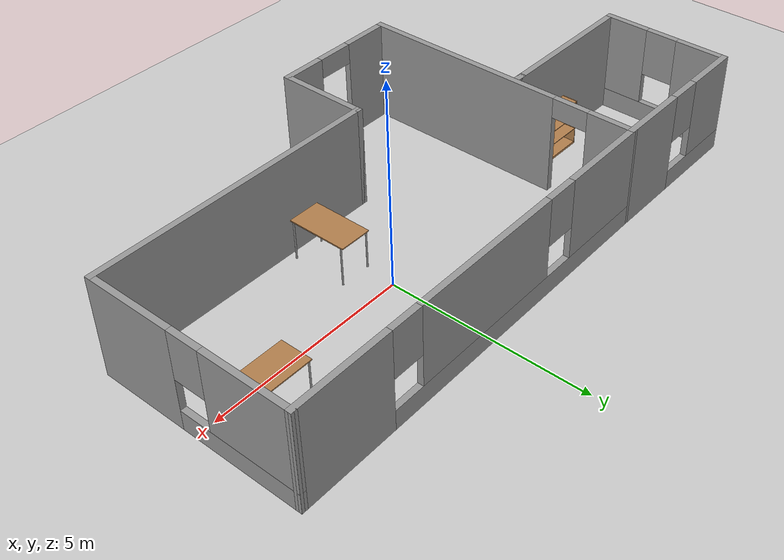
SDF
<sdf version="1.6">
 <world name="default">
  <plugin name="hello" filename="libhello.so"/>
  <model name="ground_plane">
   <static>1</static>
   <link name="link">
    <collision name="collision">
     <geometry><plane><normal>0 0 1</normal><size>100 100</size></plane></geometry>
     <surface>
      <contact><collide_bitmask>65535</collide_bitmask></contact>
      <friction><ode><mu>100</mu><mu2>50</mu2></ode></friction>
     </surface>
    </collision>
    <visual name="visual">
     <cast_shadows>0</cast_shadows>
     <geometry><plane><normal>0 0 1</normal><size>100 100</size></plane></geometry>
     <material>
      <script><uri>file://media/materials/scripts/gazebo.material</uri><name>Gazebo/Grey</name></script>
     </material>
    </visual>
   </link>
  </model>
  <gravity>0 0 -9.8</gravity>
  <magnetic_field>6e-06 2.3e-05 -4.2e-05</magnetic_field>
  <atmosphere type="adiabatic"/>
  <physics name="default_physics" default="0" type="ode">
   <max_step_size>0.001</max_step_size>
   <real_time_factor>1</real_time_factor>
   <real_time_update_rate>1000</real_time_update_rate>
  </physics>
  <scene><ambient>0.4 0.4 0.4 1</ambient><background>0.7 0.7 0.7 1</background><shadows>1</shadows></scene>
  <spherical_coordinates>
   <surface_model>EARTH_WGS84</surface_model>
   <latitude_deg>0</latitude_deg>
   <longitude_deg>0</longitude_deg>
   <elevation>0</elevation>
   <heading_deg>0</heading_deg>
  </spherical_coordinates>
  <model name="House">
   <pose>-1.63925 -0.94745 0 0 -0 0</pose>
   <link name="Wall_10">
    <collision name="Wall_10_Collision">
     <geometry><box><size>2.25 0.15 2.5</size></box></geometry>
     <pose>0 0 1.25 0 -0 0</pose>
    </collision>
    <visual name="Wall_10_Visual">
     <pose>0 0 1.25 0 -0 0</pose>
     <geometry><box><size>2.25 0.15 2.5</size></box></geometry>
     <material>
      <script><uri>file://media/materials/scripts/gazebo.material</uri><name>Gazebo/Grey</name></script>
      <ambient>1 1 1 1</ambient>
     </material>
     <meta><layer>0</layer></meta>
    </visual>
    <pose>-0.075367 -2.55037 0 0 -0 1.5708</pose>
   </link>
   <link name="Wall_11">
    <collision name="Wall_11_Collision">
     <geometry><box><size>7.25 0.15 2.5</size></box></geometry>
     <pose>0 0 1.25 0 -0 0</pose>
    </collision>
    <visual name="Wall_11_Visual">
     <pose>0 0 1.25 0 -0 0</pose>
     <geometry><box><size>7.25 0.15 2.5</size></box></geometry>
     <material>
      <script><uri>file://media/materials/scripts/gazebo.material</uri><name>Gazebo/Grey</name></script>
      <ambient>1 1 1 1</ambient>
     </material>
     <meta><layer>0</layer></meta>
    </visual>
    <pose>3.47463 -1.50037 0 0 -0 0</pose>
   </link>
   <link name="Wall_12">
    <pose>7.02463 1.04963 0 0 -0 1.5708</pose>
    <visual name="Wall_12_Visual_0">
     <pose>-1.51989 0 1.25 0 -0 0</pose>
     <geometry><box><size>2.21023 0.15 2.5</size></box></geometry>
     <material>
      <script><uri>file://media/materials/scripts/gazebo.material</uri><name>Gazebo/Grey</name></script>
      <ambient>1 1 1 1</ambient>
     </material>
     <meta><layer>0</layer></meta>
    </visual>
    <collision name="Wall_12_Collision_0">
     <geometry><box><size>2.21023 0.15 2.5</size></box></geometry>
     <pose>-1.51989 0 1.25 0 -0 0</pose>
    </collision>
    <visual name="Wall_12_Visual_1">
     <pose>1.10511 0 0.25 0 -0 0</pose>
     <geometry><box><size>3.03977 0.15 0.5</size></box></geometry>
     <material>
      <script><uri>file://media/materials/scripts/gazebo.material</uri><name>Gazebo/Grey</name></script>
      <ambient>1 1 1 1</ambient>
     </material>
     <meta><layer>0</layer></meta>
    </visual>
    <collision name="Wall_12_Collision_1">
     <geometry><box><size>3.03977 0.15 0.5</size></box></geometry>
     <pose>1.10511 0 0.25 0 -0 0</pose>
    </collision>
    <visual name="Wall_12_Visual_2">
     <pose>1.50511 0 1.5 0 -0 0</pose>
     <geometry><box><size>2.23977 0.15 2</size></box></geometry>
     <material>
      <script><uri>file://media/materials/scripts/gazebo.material</uri><name>Gazebo/Grey</name></script>
      <ambient>1 1 1 1</ambient>
     </material>
     <meta><layer>0</layer></meta>
    </visual>
    <collision name="Wall_12_Collision_2">
     <geometry><box><size>2.23977 0.15 2</size></box></geometry>
     <pose>1.50511 0 1.5 0 -0 0</pose>
    </collision>
    <visual name="Wall_12_Visual_3">
     <pose>-0.014772 0 1.9 0 -0 0</pose>
     <geometry><box><size>0.8 0.15 1.2</size></box></geometry>
     <material>
      <script><uri>file://media/materials/scripts/gazebo.material</uri><name>Gazebo/Grey</name></script>
      <ambient>1 1 1 1</ambient>
     </material>
     <meta><layer>0</layer></meta>
    </visual>
    <collision name="Wall_12_Collision_3">
     <geometry><box><size>0.8 0.15 1.2</size></box></geometry>
     <pose>-0.014772 0 1.9 0 -0 0</pose>
    </collision>
   </link>
   <link name="Wall_13">
    <pose>1.92463 3.54963 0 0 0 -3.13179</pose>
    <visual name="Wall_13_Visual_0">
     <pose>-3.9405 0 1.25 0 -0 0</pose>
     <geometry><box><size>2.46948 0.15 2.5</size></box></geometry>
     <material>
      <script><uri>file://media/materials/scripts/gazebo.material</uri><name>Gazebo/Grey</name></script>
      <ambient>1 1 1 1</ambient>
     </material>
     <meta><layer>0</layer></meta>
    </visual>
    <collision name="Wall_13_Collision_0">
     <geometry><box><size>2.46948 0.15 2.5</size></box></geometry>
     <pose>-3.9405 0 1.25 0 -0 0</pose>
    </collision>
    <visual name="Wall_13_Visual_1">
     <pose>1.23474 0 0.25 0 -0 0</pose>
     <geometry><box><size>7.88101 0.15 0.5</size></box></geometry>
     <material>
      <script><uri>file://media/materials/scripts/gazebo.material</uri><name>Gazebo/Grey</name></script>
      <ambient>1 1 1 1</ambient>
     </material>
     <meta><layer>0</layer></meta>
    </visual>
    <collision name="Wall_13_Collision_1">
     <geometry><box><size>7.88101 0.15 0.5</size></box></geometry>
     <pose>1.23474 0 0.25 0 -0 0</pose>
    </collision>
    <visual name="Wall_13_Visual_2">
     <pose>0.068692 0 1.5 0 -0 0</pose>
     <geometry><box><size>3.9489 0.15 2</size></box></geometry>
     <material>
      <script><uri>file://media/materials/scripts/gazebo.material</uri><name>Gazebo/Grey</name></script>
      <ambient>1 1 1 1</ambient>
     </material>
     <meta><layer>0</layer></meta>
    </visual>
    <collision name="Wall_13_Collision_2">
     <geometry><box><size>3.9489 0.15 2</size></box></geometry>
     <pose>0.068692 0 1.5 0 -0 0</pose>
    </collision>
    <visual name="Wall_13_Visual_3">
     <pose>4.0092 0 1.5 0 -0 0</pose>
     <geometry><box><size>2.3321 0.15 2</size></box></geometry>
     <material>
      <script><uri>file://media/materials/scripts/gazebo.material</uri><name>Gazebo/Grey</name></script>
      <ambient>1 1 1 1</ambient>
     </material>
     <meta><layer>0</layer></meta>
    </visual>
    <collision name="Wall_13_Collision_3">
     <geometry><box><size>2.3321 0.15 2</size></box></geometry>
     <pose>4.0092 0 1.5 0 -0 0</pose>
    </collision>
    <visual name="Wall_13_Visual_4">
     <pose>-2.30576 0 1.9 0 -0 0</pose>
     <geometry><box><size>0.8 0.15 1.2</size></box></geometry>
     <material>
      <script><uri>file://media/materials/scripts/gazebo.material</uri><name>Gazebo/Grey</name></script>
      <ambient>1 1 1 1</ambient>
     </material>
     <meta><layer>0</layer></meta>
    </visual>
    <collision name="Wall_13_Collision_4">
     <geometry><box><size>0.8 0.15 1.2</size></box></geometry>
     <pose>-2.30576 0 1.9 0 -0 0</pose>
    </collision>
    <visual name="Wall_13_Visual_5">
     <pose>2.44314 0 1.9 0 -0 0</pose>
     <geometry><box><size>0.8 0.15 1.2</size></box></geometry>
     <material>
      <script><uri>file://media/materials/scripts/gazebo.material</uri><name>Gazebo/Grey</name></script>
      <ambient>1 1 1 1</ambient>
     </material>
     <meta><layer>0</layer></meta>
    </visual>
    <collision name="Wall_13_Collision_5">
     <geometry><box><size>0.8 0.15 1.2</size></box></geometry>
     <pose>2.44314 0 1.9 0 -0 0</pose>
    </collision>
   </link>
   <link name="Wall_14">
    <pose>-5.10037 3.49963 0 0 -0 3.14159</pose>
    <visual name="Wall_14_Visual_0">
     <pose>-1.11622 0 1.25 0 -0 0</pose>
     <geometry><box><size>1.76756 0.15 2.5</size></box></geometry>
     <material>
      <script><uri>file://media/materials/scripts/gazebo.material</uri><name>Gazebo/Grey</name></script>
      <ambient>1 1 1 1</ambient>
     </material>
     <meta><layer>0</layer></meta>
    </visual>
    <collision name="Wall_14_Collision_0">
     <geometry><box><size>1.76756 0.15 2.5</size></box></geometry>
     <pose>-1.11622 0 1.25 0 -0 0</pose>
    </collision>
    <visual name="Wall_14_Visual_1">
     <pose>0.883779 0 0.25 0 -0 0</pose>
     <geometry><box><size>2.23244 0.15 0.5</size></box></geometry>
     <material>
      <script><uri>file://media/materials/scripts/gazebo.material</uri><name>Gazebo/Grey</name></script>
      <ambient>1 1 1 1</ambient>
     </material>
     <meta><layer>0</layer></meta>
    </visual>
    <collision name="Wall_14_Collision_1">
     <geometry><box><size>2.23244 0.15 0.5</size></box></geometry>
     <pose>0.883779 0 0.25 0 -0 0</pose>
    </collision>
    <visual name="Wall_14_Visual_2">
     <pose>1.28378 0 1.5 0 -0 0</pose>
     <geometry><box><size>1.43244 0.15 2</size></box></geometry>
     <material>
      <script><uri>file://media/materials/scripts/gazebo.material</uri><name>Gazebo/Grey</name></script>
      <ambient>1 1 1 1</ambient>
     </material>
     <meta><layer>0</layer></meta>
    </visual>
    <collision name="Wall_14_Collision_2">
     <geometry><box><size>1.43244 0.15 2</size></box></geometry>
     <pose>1.28378 0 1.5 0 -0 0</pose>
    </collision>
    <visual name="Wall_14_Visual_3">
     <pose>0.167557 0 1.9 0 -0 0</pose>
     <geometry><box><size>0.8 0.15 1.2</size></box></geometry>
     <material>
      <script><uri>file://media/materials/scripts/gazebo.material</uri><name>Gazebo/Grey</name></script>
      <ambient>1 1 1 1</ambient>
     </material>
     <meta><layer>0</layer></meta>
    </visual>
    <collision name="Wall_14_Collision_3">
     <geometry><box><size>0.8 0.15 1.2</size></box></geometry>
     <pose>0.167557 0 1.9 0 -0 0</pose>
    </collision>
   </link>
   <link name="Wall_15">
    <pose>-7.02537 1.94963 0 0 0 -1.5708</pose>
    <visual name="Wall_15_Visual_0">
     <pose>-0.976509 0 1.25 0 -0 0</pose>
     <geometry><box><size>1.29698 0.15 2.5</size></box></geometry>
     <material>
      <script><uri>file://media/materials/scripts/gazebo.material</uri><name>Gazebo/Grey</name></script>
      <ambient>1 1 1 1</ambient>
     </material>
     <meta><layer>0</layer></meta>
    </visual>
    <collision name="Wall_15_Collision_0">
     <geometry><box><size>1.29698 0.15 2.5</size></box></geometry>
     <pose>-0.976509 0 1.25 0 -0 0</pose>
    </collision>
    <visual name="Wall_15_Visual_1">
     <pose>0.648491 0 0.25 0 -0 0</pose>
     <geometry><box><size>1.95302 0.15 0.5</size></box></geometry>
     <material>
      <script><uri>file://media/materials/scripts/gazebo.material</uri><name>Gazebo/Grey</name></script>
      <ambient>1 1 1 1</ambient>
     </material>
     <meta><layer>0</layer></meta>
    </visual>
    <collision name="Wall_15_Collision_1">
     <geometry><box><size>1.95302 0.15 0.5</size></box></geometry>
     <pose>0.648491 0 0.25 0 -0 0</pose>
    </collision>
    <visual name="Wall_15_Visual_2">
     <pose>1.04849 0 1.5 0 -0 0</pose>
     <geometry><box><size>1.15302 0.15 2</size></box></geometry>
     <material>
      <script><uri>file://media/materials/scripts/gazebo.material</uri><name>Gazebo/Grey</name></script>
      <ambient>1 1 1 1</ambient>
     </material>
     <meta><layer>0</layer></meta>
    </visual>
    <collision name="Wall_15_Collision_2">
     <geometry><box><size>1.15302 0.15 2</size></box></geometry>
     <pose>1.04849 0 1.5 0 -0 0</pose>
    </collision>
    <visual name="Wall_15_Visual_3">
     <pose>0.071982 0 1.9 0 -0 0</pose>
     <geometry><box><size>0.8 0.15 1.2</size></box></geometry>
     <material>
      <script><uri>file://media/materials/scripts/gazebo.material</uri><name>Gazebo/Grey</name></script>
      <ambient>1 1 1 1</ambient>
     </material>
     <meta><layer>0</layer></meta>
    </visual>
    <collision name="Wall_15_Collision_3">
     <geometry><box><size>0.8 0.15 1.2</size></box></geometry>
     <pose>0.071982 0 1.9 0 -0 0</pose>
    </collision>
   </link>
   <link name="Wall_16">
    <collision name="Wall_16_Collision">
     <geometry><box><size>3.75 0.15 2.5</size></box></geometry>
     <pose>0 0 1.25 0 -0 0</pose>
    </collision>
    <visual name="Wall_16_Visual">
     <pose>0 0 1.25 0 -0 0</pose>
     <geometry><box><size>3.75 0.15 2.5</size></box></geometry>
     <material>
      <script><uri>file://media/materials/scripts/gazebo.material</uri><name>Gazebo/Grey</name></script>
      <ambient>1 1 1 1</ambient>
     </material>
     <meta><layer>0</layer></meta>
    </visual>
    <pose>-5.22537 0.399634 0 0 -0 0</pose>
   </link>
   <link name="Wall_17">
    <collision name="Wall_17_Collision">
     <geometry><box><size>0.15 0.15 2.5</size></box></geometry>
     <pose>0 0 1.25 0 -0 0</pose>
    </collision>
    <visual name="Wall_17_Visual">
     <pose>0 0 1.25 0 -0 0</pose>
     <geometry><box><size>0.15 0.15 2.5</size></box></geometry>
     <material>
      <script><uri>file://media/materials/scripts/gazebo.material</uri><name>Gazebo/Grey</name></script>
      <ambient>1 1 1 1</ambient>
     </material>
     <meta><layer>0</layer></meta>
    </visual>
    <pose>-3.42537 0.399634 0 0 -0 0</pose>
   </link>
   <link name="Wall_18">
    <collision name="Wall_18_Collision">
     <geometry><box><size>0.25 0.15 2.5</size></box></geometry>
     <pose>0 0 1.25 0 -0 0</pose>
    </collision>
    <visual name="Wall_18_Visual">
     <pose>0 0 1.25 0 -0 0</pose>
     <geometry><box><size>0.25 0.15 2.5</size></box></geometry>
     <material>
      <script><uri>file://media/materials/scripts/gazebo.material</uri><name>Gazebo/Grey</name></script>
      <ambient>1 1 1 1</ambient>
     </material>
     <meta><layer>0</layer></meta>
    </visual>
    <pose>-3.37537 0.399634 0 0 -0 0</pose>
   </link>
   <link name="Wall_5">
    <pose>-3.17537 -0.050366 0 0 0 -1.5708</pose>
    <visual name="Wall_5_Visual_0">
     <pose>-3.03669 0 1.25 0 -0 0</pose>
     <geometry><box><size>1.17662 0.15 2.5</size></box></geometry>
     <material>
      <script><uri>file://media/materials/scripts/gazebo.material</uri><name>Gazebo/Grey</name></script>
      <ambient>1 1 1 1</ambient>
     </material>
     <meta><layer>0</layer></meta>
    </visual>
    <collision name="Wall_5_Collision_0">
     <geometry><box><size>1.17662 0.15 2.5</size></box></geometry>
     <pose>-3.03669 0 1.25 0 -0 0</pose>
    </collision>
    <visual name="Wall_5_Visual_1">
     <pose>1.03831 0 1.25 0 -0 0</pose>
     <geometry><box><size>5.17338 0.15 2.5</size></box></geometry>
     <material>
      <script><uri>file://media/materials/scripts/gazebo.material</uri><name>Gazebo/Grey</name></script>
      <ambient>1 1 1 1</ambient>
     </material>
     <meta><layer>0</layer></meta>
    </visual>
    <collision name="Wall_5_Collision_1">
     <geometry><box><size>5.17338 0.15 2.5</size></box></geometry>
     <pose>1.03831 0 1.25 0 -0 0</pose>
    </collision>
    <visual name="Wall_5_Visual_2">
     <pose>-1.99838 0 2.25 0 -0 0</pose>
     <geometry><box><size>0.9 0.15 0.5</size></box></geometry>
     <material>
      <script><uri>file://media/materials/scripts/gazebo.material</uri><name>Gazebo/Grey</name></script>
      <ambient>1 1 1 1</ambient>
     </material>
     <meta><layer>0</layer></meta>
    </visual>
    <collision name="Wall_5_Collision_2">
     <geometry><box><size>0.9 0.15 0.5</size></box></geometry>
     <pose>-1.99838 0 2.25 0 -0 0</pose>
    </collision>
   </link>
   <link name="Wall_6">
    <pose>-1.62537 -3.60037 0 0 -0 0</pose>
    <visual name="Wall_6_Visual_0">
     <pose>-0.986875 0 1.25 0 -0 0</pose>
     <geometry><box><size>1.27625 0.15 2.5</size></box></geometry>
     <material>
      <script><uri>file://media/materials/scripts/gazebo.material</uri><name>Gazebo/Grey</name></script>
      <ambient>1 1 1 1</ambient>
     </material>
     <meta><layer>0</layer></meta>
    </visual>
    <collision name="Wall_6_Collision_0">
     <geometry><box><size>1.27625 0.15 2.5</size></box></geometry>
     <pose>-0.986875 0 1.25 0 -0 0</pose>
    </collision>
    <visual name="Wall_6_Visual_1">
     <pose>1.08813 0 1.25 0 -0 0</pose>
     <geometry><box><size>1.07375 0.15 2.5</size></box></geometry>
     <material>
      <script><uri>file://media/materials/scripts/gazebo.material</uri><name>Gazebo/Grey</name></script>
      <ambient>1 1 1 1</ambient>
     </material>
     <meta><layer>0</layer></meta>
    </visual>
    <collision name="Wall_6_Collision_1">
     <geometry><box><size>1.07375 0.15 2.5</size></box></geometry>
     <pose>1.08813 0 1.25 0 -0 0</pose>
    </collision>
    <visual name="Wall_6_Visual_2">
     <pose>0.101249 0 2.25 0 -0 0</pose>
     <geometry><box><size>0.9 0.15 0.5</size></box></geometry>
     <material>
      <script><uri>file://media/materials/scripts/gazebo.material</uri><name>Gazebo/Grey</name></script>
      <ambient>1 1 1 1</ambient>
     </material>
     <meta><layer>0</layer></meta>
    </visual>
    <collision name="Wall_6_Collision_2">
     <geometry><box><size>0.9 0.15 0.5</size></box></geometry>
     <pose>0.101249 0 2.25 0 -0 0</pose>
    </collision>
   </link>
   <static>1</static>
  </model>
  <model name="bookshelf">
   <static>1</static>
   <link name="link">
    <inertial><mass>1</mass></inertial>
    <collision name="back">
     <pose>0 0.005 0.6 0 -0 0</pose>
     <geometry><box><size>0.9 0.01 1.2</size></box></geometry>
    </collision>
    <visual name="visual1">
     <pose>0 0.005 0.6 0 -0 0</pose>
     <geometry><box><size>0.9 0.01 1.2</size></box></geometry>
     <material>
      <script><uri>file://media/materials/scripts/gazebo.material</uri><name>Gazebo/Wood</name></script>
     </material>
    </visual>
    <collision name="left_side">
     <pose>0.45 -0.195 0.6 0 -0 0</pose>
     <geometry><box><size>0.02 0.4 1.2</size></box></geometry>
    </collision>
    <visual name="visual2">
     <pose>0.45 -0.195 0.6 0 -0 0</pose>
     <geometry><box><size>0.02 0.4 1.2</size></box></geometry>
     <material>
      <script><uri>file://media/materials/scripts/gazebo.material</uri><name>Gazebo/Wood</name></script>
     </material>
    </visual>
    <collision name="right_side">
     <pose>-0.45 -0.195 0.6 0 -0 0</pose>
     <geometry><box><size>0.02 0.4 1.2</size></box></geometry>
    </collision>
    <visual name="visual3">
     <pose>-0.45 -0.195 0.6 0 -0 0</pose>
     <geometry><box><size>0.02 0.4 1.2</size></box></geometry>
     <material>
      <script><uri>file://media/materials/scripts/gazebo.material</uri><name>Gazebo/Wood</name></script>
     </material>
    </visual>
    <collision name="bottom">
     <pose>0 -0.195 0.03 0 -0 0</pose>
     <geometry><box><size>0.88 0.4 0.06</size></box></geometry>
    </collision>
    <visual name="visual4">
     <pose>0 -0.195 0.03 0 -0 0</pose>
     <geometry><box><size>0.88 0.4 0.06</size></box></geometry>
     <material>
      <script><uri>file://media/materials/scripts/gazebo.material</uri><name>Gazebo/Wood</name></script>
     </material>
    </visual>
    <collision name="top">
     <pose>0 -0.195 1.19 0 -0 0</pose>
     <geometry><box><size>0.88 0.4 0.02</size></box></geometry>
    </collision>
    <visual name="visual5">
     <pose>0 -0.195 1.19 0 -0 0</pose>
     <geometry><box><size>0.88 0.4 0.02</size></box></geometry>
     <material>
      <script><uri>file://media/materials/scripts/gazebo.material</uri><name>Gazebo/Wood</name></script>
     </material>
    </visual>
    <collision name="low_shelf">
     <pose>0 -0.195 0.43 0 -0 0</pose>
     <geometry><box><size>0.88 0.4 0.02</size></box></geometry>
    </collision>
    <visual name="visual6">
     <pose>0 -0.195 0.43 0 -0 0</pose>
     <geometry><box><size>0.88 0.4 0.02</size></box></geometry>
     <material>
      <script><uri>file://media/materials/scripts/gazebo.material</uri><name>Gazebo/Wood</name></script>
     </material>
    </visual>
    <collision name="high_shelf">
     <pose>0 -0.195 0.8 0 -0 0</pose>
     <geometry><box><size>0.88 0.4 0.02</size></box></geometry>
    </collision>
    <visual name="visual7">
     <pose>0 -0.195 0.8 0 -0 0</pose>
     <geometry><box><size>0.88 0.4 0.02</size></box></geometry>
     <material>
      <script><uri>file://media/materials/scripts/gazebo.material</uri><name>Gazebo/Wood</name></script>
     </material>
    </visual>
   </link>
   <pose>-0.526465 2.50976 0 0 -0 0</pose>
  </model>
  <model name="table">
   <static>1</static>
   <link name="link">
    <collision name="surface">
     <pose>0 0 1 0 -0 0</pose>
     <geometry><box><size>1.5 0.8 0.03</size></box></geometry>
     <surface><friction><ode><mu>0.6</mu><mu2>0.6</mu2></ode></friction></surface>
    </collision>
    <visual name="visual1">
     <pose>0 0 1 0 -0 0</pose>
     <geometry><box><size>1.5 0.8 0.03</size></box></geometry>
     <material>
      <script><uri>file://media/materials/scripts/gazebo.material</uri><name>Gazebo/Wood</name></script>
     </material>
    </visual>
    <collision name="front_left_leg">
     <pose>0.68 0.38 0.5 0 -0 0</pose>
     <geometry><cylinder><radius>0.02</radius><length>1</length></cylinder></geometry>
    </collision>
    <visual name="front_left_leg">
     <pose>0.68 0.38 0.5 0 -0 0</pose>
     <geometry><cylinder><radius>0.02</radius><length>1</length></cylinder></geometry>
     <material>
      <script><uri>file://media/materials/scripts/gazebo.material</uri><name>Gazebo/Grey</name></script>
     </material>
    </visual>
    <collision name="front_right_leg">
     <pose>0.68 -0.38 0.5 0 -0 0</pose>
     <geometry><cylinder><radius>0.02</radius><length>1</length></cylinder></geometry>
    </collision>
    <visual name="front_right_leg">
     <pose>0.68 -0.38 0.5 0 -0 0</pose>
     <geometry><cylinder><radius>0.02</radius><length>1</length></cylinder></geometry>
     <material>
      <script><uri>file://media/materials/scripts/gazebo.material</uri><name>Gazebo/Grey</name></script>
     </material>
    </visual>
    <collision name="back_right_leg">
     <pose>-0.68 -0.38 0.5 0 -0 0</pose>
     <geometry><cylinder><radius>0.02</radius><length>1</length></cylinder></geometry>
    </collision>
    <visual name="back_right_leg">
     <pose>-0.68 -0.38 0.5 0 -0 0</pose>
     <geometry><cylinder><radius>0.02</radius><length>1</length></cylinder></geometry>
     <material>
      <script><uri>file://media/materials/scripts/gazebo.material</uri><name>Gazebo/Grey</name></script>
     </material>
    </visual>
    <collision name="back_left_leg">
     <pose>-0.68 0.38 0.5 0 -0 0</pose>
     <geometry><cylinder><radius>0.02</radius><length>1</length></cylinder></geometry>
    </collision>
    <visual name="back_left_leg">
     <pose>-0.68 0.38 0.5 0 -0 0</pose>
     <geometry><cylinder><radius>0.02</radius><length>1</length></cylinder></geometry>
     <material>
      <script><uri>file://media/materials/scripts/gazebo.material</uri><name>Gazebo/Grey</name></script>
     </material>
    </visual>
   </link>
   <pose>4.09198 0.592209 0 0 -0 0</pose>
  </model>
  <model name="bookshelf_0">
   <static>1</static>
   <link name="link">
    <inertial><mass>1</mass></inertial>
    <collision name="back">
     <pose>0 0.005 0.6 0 -0 0</pose>
     <geometry><box><size>0.9 0.01 1.2</size></box></geometry>
    </collision>
    <visual name="visual1">
     <pose>0 0.005 0.6 0 -0 0</pose>
     <geometry><box><size>0.9 0.01 1.2</size></box></geometry>
     <material>
      <script><uri>file://media/materials/scripts/gazebo.material</uri><name>Gazebo/Wood</name></script>
     </material>
    </visual>
    <collision name="left_side">
     <pose>0.45 -0.195 0.6 0 -0 0</pose>
     <geometry><box><size>0.02 0.4 1.2</size></box></geometry>
    </collision>
    <visual name="visual2">
     <pose>0.45 -0.195 0.6 0 -0 0</pose>
     <geometry><box><size>0.02 0.4 1.2</size></box></geometry>
     <material>
      <script><uri>file://media/materials/scripts/gazebo.material</uri><name>Gazebo/Wood</name></script>
     </material>
    </visual>
    <collision name="right_side">
     <pose>-0.45 -0.195 0.6 0 -0 0</pose>
     <geometry><box><size>0.02 0.4 1.2</size></box></geometry>
    </collision>
    <visual name="visual3">
     <pose>-0.45 -0.195 0.6 0 -0 0</pose>
     <geometry><box><size>0.02 0.4 1.2</size></box></geometry>
     <material>
      <script><uri>file://media/materials/scripts/gazebo.material</uri><name>Gazebo/Wood</name></script>
     </material>
    </visual>
    <collision name="bottom">
     <pose>0 -0.195 0.03 0 -0 0</pose>
     <geometry><box><size>0.88 0.4 0.06</size></box></geometry>
    </collision>
    <visual name="visual4">
     <pose>0 -0.195 0.03 0 -0 0</pose>
     <geometry><box><size>0.88 0.4 0.06</size></box></geometry>
     <material>
      <script><uri>file://media/materials/scripts/gazebo.material</uri><name>Gazebo/Wood</name></script>
     </material>
    </visual>
    <collision name="top">
     <pose>0 -0.195 1.19 0 -0 0</pose>
     <geometry><box><size>0.88 0.4 0.02</size></box></geometry>
    </collision>
    <visual name="visual5">
     <pose>0 -0.195 1.19 0 -0 0</pose>
     <geometry><box><size>0.88 0.4 0.02</size></box></geometry>
     <material>
      <script><uri>file://media/materials/scripts/gazebo.material</uri><name>Gazebo/Wood</name></script>
     </material>
    </visual>
    <collision name="low_shelf">
     <pose>0 -0.195 0.43 0 -0 0</pose>
     <geometry><box><size>0.88 0.4 0.02</size></box></geometry>
    </collision>
    <visual name="visual6">
     <pose>0 -0.195 0.43 0 -0 0</pose>
     <geometry><box><size>0.88 0.4 0.02</size></box></geometry>
     <material>
      <script><uri>file://media/materials/scripts/gazebo.material</uri><name>Gazebo/Wood</name></script>
     </material>
    </visual>
    <collision name="high_shelf">
     <pose>0 -0.195 0.8 0 -0 0</pose>
     <geometry><box><size>0.88 0.4 0.02</size></box></geometry>
    </collision>
    <visual name="visual7">
     <pose>0 -0.195 0.8 0 -0 0</pose>
     <geometry><box><size>0.88 0.4 0.02</size></box></geometry>
     <material>
      <script><uri>file://media/materials/scripts/gazebo.material</uri><name>Gazebo/Wood</name></script>
     </material>
    </visual>
   </link>
   <pose>-6.26061 -0.462594 0 0 -0 3.14159</pose>
  </model>
  <model name="table_0">
   <static>1</static>
   <link name="link">
    <collision name="surface">
     <pose>0 0 1 0 -0 0</pose>
     <geometry><box><size>1.5 0.8 0.03</size></box></geometry>
     <surface><friction><ode><mu>0.6</mu><mu2>0.6</mu2></ode></friction></surface>
    </collision>
    <visual name="visual1">
     <pose>0 0 1 0 -0 0</pose>
     <geometry><box><size>1.5 0.8 0.03</size></box></geometry>
     <material>
      <script><uri>file://media/materials/scripts/gazebo.material</uri><name>Gazebo/Wood</name></script>
     </material>
    </visual>
    <collision name="front_left_leg">
     <pose>0.68 0.38 0.5 0 -0 0</pose>
     <geometry><cylinder><radius>0.02</radius><length>1</length></cylinder></geometry>
    </collision>
    <visual name="front_left_leg">
     <pose>0.68 0.38 0.5 0 -0 0</pose>
     <geometry><cylinder><radius>0.02</radius><length>1</length></cylinder></geometry>
     <material>
      <script><uri>file://media/materials/scripts/gazebo.material</uri><name>Gazebo/Grey</name></script>
     </material>
    </visual>
    <collision name="front_right_leg">
     <pose>0.68 -0.38 0.5 0 -0 0</pose>
     <geometry><cylinder><radius>0.02</radius><length>1</length></cylinder></geometry>
    </collision>
    <visual name="front_right_leg">
     <pose>0.68 -0.38 0.5 0 -0 0</pose>
     <geometry><cylinder><radius>0.02</radius><length>1</length></cylinder></geometry>
     <material>
      <script><uri>file://media/materials/scripts/gazebo.material</uri><name>Gazebo/Grey</name></script>
     </material>
    </visual>
    <collision name="back_right_leg">
     <pose>-0.68 -0.38 0.5 0 -0 0</pose>
     <geometry><cylinder><radius>0.02</radius><length>1</length></cylinder></geometry>
    </collision>
    <visual name="back_right_leg">
     <pose>-0.68 -0.38 0.5 0 -0 0</pose>
     <geometry><cylinder><radius>0.02</radius><length>1</length></cylinder></geometry>
     <material>
      <script><uri>file://media/materials/scripts/gazebo.material</uri><name>Gazebo/Grey</name></script>
     </material>
    </visual>
    <collision name="back_left_leg">
     <pose>-0.68 0.38 0.5 0 -0 0</pose>
     <geometry><cylinder><radius>0.02</radius><length>1</length></cylinder></geometry>
    </collision>
    <visual name="back_left_leg">
     <pose>-0.68 0.38 0.5 0 -0 0</pose>
     <geometry><cylinder><radius>0.02</radius><length>1</length></cylinder></geometry>
     <material>
      <script><uri>file://media/materials/scripts/gazebo.material</uri><name>Gazebo/Grey</name></script>
     </material>
    </visual>
   </link>
   <pose>0.279439 -1.49749 0 0 -0 1.5708</pose>
  </model>
  <model name="my_ball">
   <link name="link_0">
    <inertial>
     <mass>1</mass>
     <inertia><ixx>0.1</ixx><ixy>0</ixy><ixz>0</ixz><iyy>0.1</iyy><iyz>0</iyz><izz>0.1</izz></inertia>
    </inertial>
    <visual name="visual">
     <geometry><sphere><radius>0.1</radius></sphere></geometry>
     <material>
      <lighting>1</lighting>
      <script><uri>file://media/materials/scripts/gazebo.material</uri><name>Gazebo/Grey</name></script>
      <shader type="pixel"><normal_map>__default__</normal_map></shader>
      <ambient>1 1 1 1</ambient>
      <diffuse>1 1 1 1</diffuse>
      <specular>1 1 1 1</specular>
      <emissive>1 1 1 1</emissive>
     </material>
    </visual>
    <collision name="collision">
     <geometry><sphere><radius>0.1</radius></sphere></geometry>
     <surface>
      <friction>
       <ode><mu>1</mu><mu2>1</mu2><fdir1>0 0 0</fdir1><slip1>0</slip1><slip2>0</slip2></ode>
       <torsional>
        <coefficient>1</coefficient>
        <patch_radius>0</patch_radius>
        <surface_radius>0</surface_radius>
        <use_patch_radius>1</use_patch_radius>
        <ode><slip>0</slip></ode>
       </torsional>
      </friction>
      <bounce><restitution_coefficient>0</restitution_coefficient><threshold>1e+06</threshold></bounce>
      <contact>
       <collide_without_contact>0</collide_without_contact>
       <collide_without_contact_bitmask>1</collide_without_contact_bitmask>
       <collide_bitmask>1</collide_bitmask>
       <ode>
        <soft_cfm>0</soft_cfm>
        <soft_erp>0.2</soft_erp>
        <kp>1e+13</kp>
        <kd>1</kd>
        <max_vel>0.01</max_vel>
        <min_depth>0</min_depth>
       </ode>
       <bullet>
        <split_impulse>1</split_impulse>
        <split_impulse_penetration_threshold>-0.01</split_impulse_penetration_threshold>
        <soft_cfm>0</soft_cfm>
        <soft_erp>0.2</soft_erp>
        <kp>1e+13</kp>
        <kd>1</kd>
       </bullet>
      </contact>
     </surface>
    </collision>
   </link>
   <static>0</static>
   <pose>1.5876 -3.77204 0.1 0 -0 0</pose>
  </model>
  <light name="user_directional_light_0" type="directional">
   <pose>3.95074 -9.92138 1 0 -0 0</pose>
   <diffuse>0.5 0.5 0.5 1</diffuse>
   <specular>0.1 0.1 0.1 1</specular>
   <direction>0.1 0.1 -0.9</direction>
   <attenuation>
    <range>20</range>
    <constant>0.5</constant>
    <linear>0.01</linear>
    <quadratic>0.001</quadratic>
   </attenuation>
  </light>
  <light name="user_point_light_0" type="point">
   <pose>0.484002 0.312119 1 0 -0 0</pose>
   <diffuse>0.5 0.5 0.5 1</diffuse>
   <specular>0.1 0.1 0.1 1</specular>
   <attenuation>
    <range>20</range>
    <constant>0.5</constant>
    <linear>0.01</linear>
    <quadratic>0.001</quadratic>
   </attenuation>
   <cast_shadows>0</cast_shadows>
   <direction>0 0 -1</direction>
  </light>
 </world>
</sdf>
